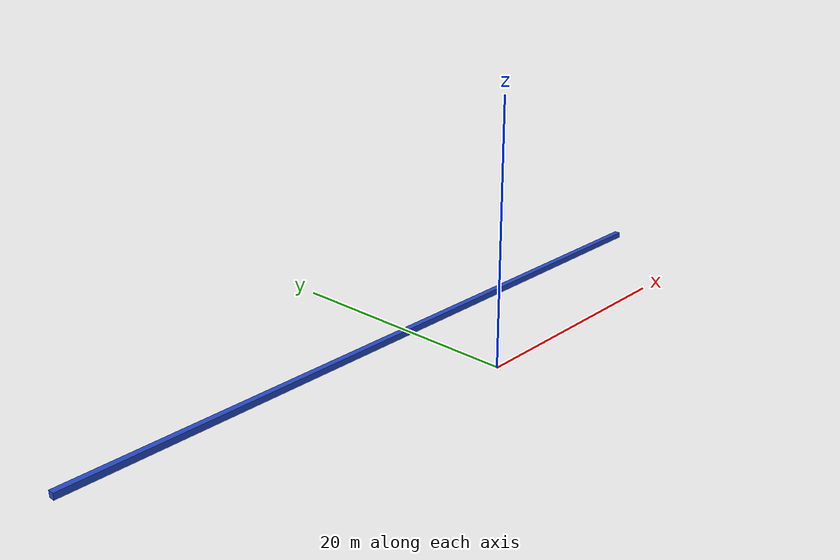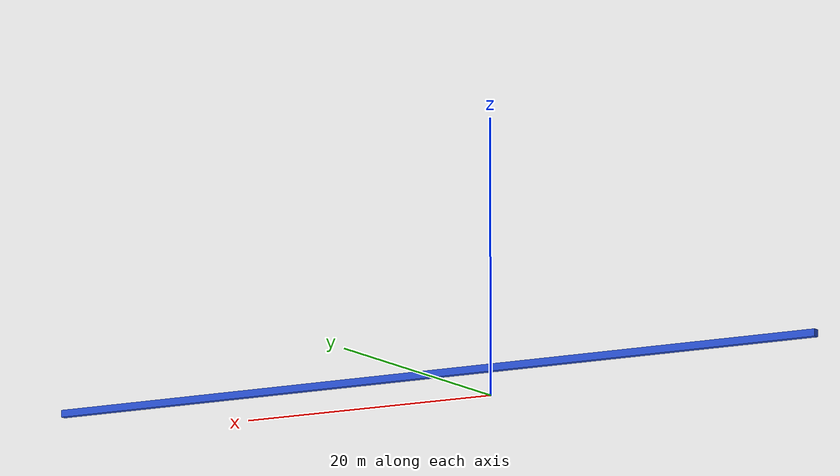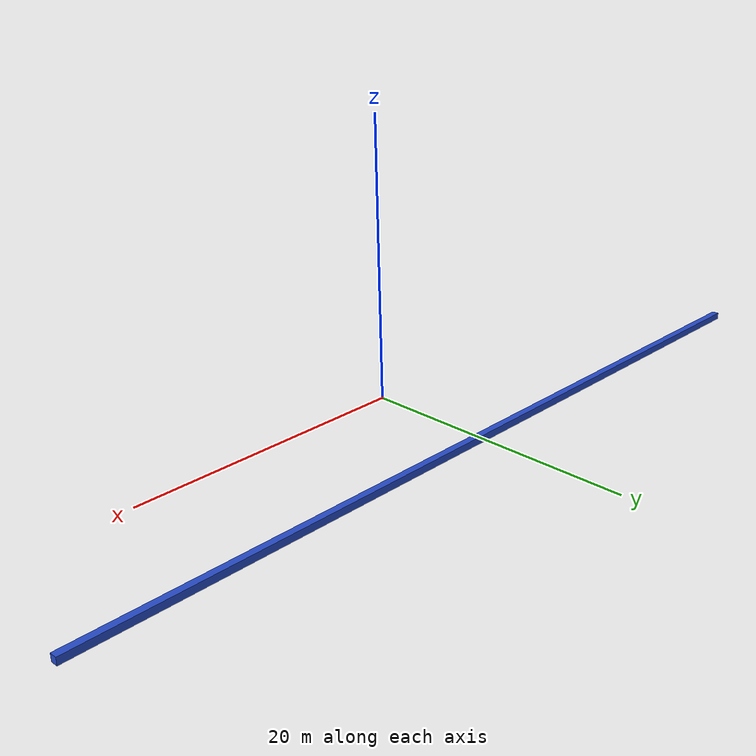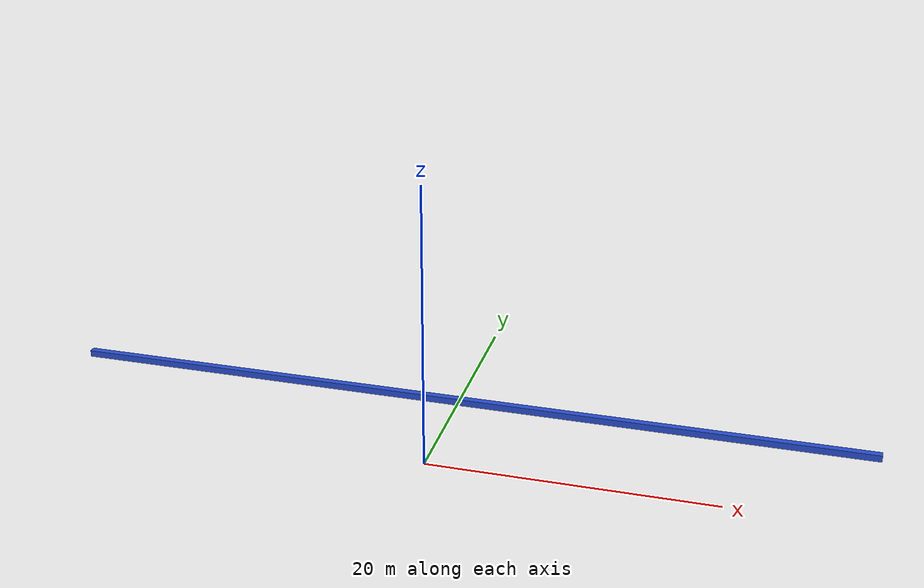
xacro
<?xml version="1.0"?>

<!-- STL-version of the URDF, used with gazebo for dynamic simulation  -->

<robot name="barco_obs2" xmlns:xacro="http://www.ros.org/wiki/xacro">

    <xacro:property name="obs_x" value="5"/>
    <xacro:property name="obs_y" value="1"/>
    <xacro:property name="obs_z" value="5"/>
    <xacro:property name="side_x" value="60"/>
    <xacro:property name="side_y" value="0.5"/>
    <xacro:property name="side_z" value="0.5"/>
    <xacro:property name="side_dist" value="9"/>
    <xacro:property name="PI" value="3.1415926535897931"/>

    <link name="side_link2">
        <collision>
          <origin rpy="1.57079632679 0 0"/>
          <geometry>
              <box size="${side_x} ${side_y} ${side_z}"/>
          </geometry>
        </collision>
        <visual>
            <origin rpy="1.57079632679 0 0" xyz="0 ${side_dist} 0"/>
          <geometry>
              <box size="${side_x} ${side_y} ${side_z}"/>
          </geometry>
          <material name="blue"/>
        </visual>
        <inertial>
            <origin rpy="0 0 0" xyz="0 ${side_dist} 0"/>
          <mass value="10"/>
          <inertia ixx="0.5" ixy="0.0" ixz="0.0" iyy="0.5" iyz="0.0" izz="0.5"/>
        </inertial>
        <buoyancy>
            <compensation>1.2</compensation>
            <origin xyz= "0 0 0"/>
            <limit radius="0.1"/>
            <damping xyz="20 50 50" rpy="20 50 50"/>
        </buoyancy>
    </link>

</robot>
